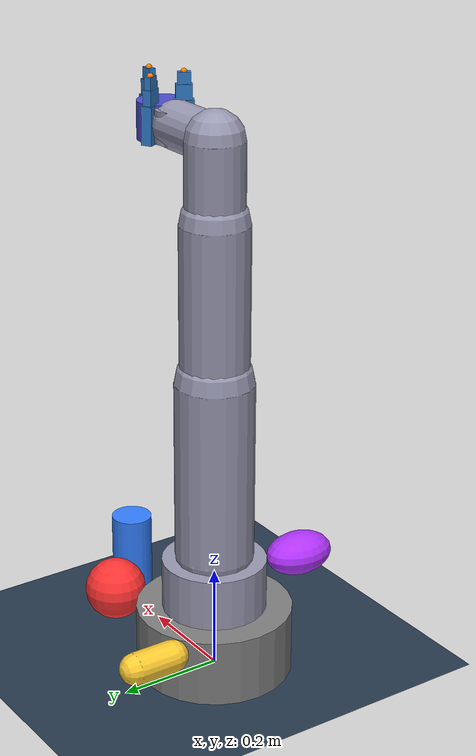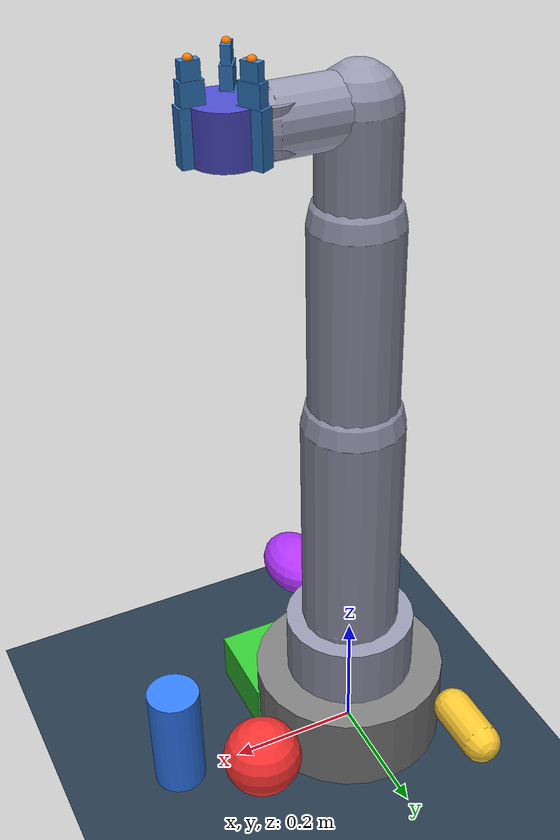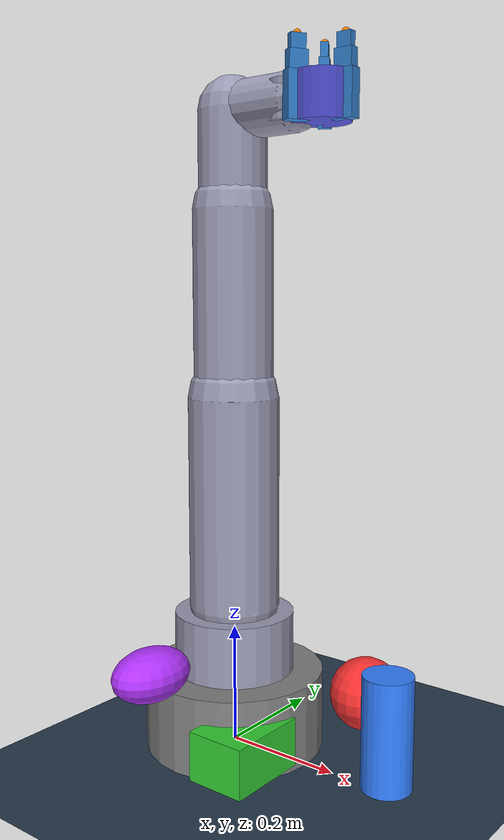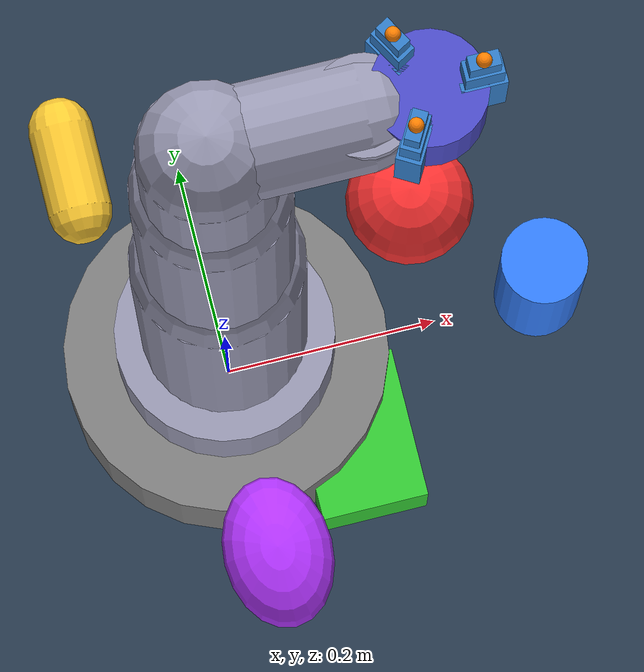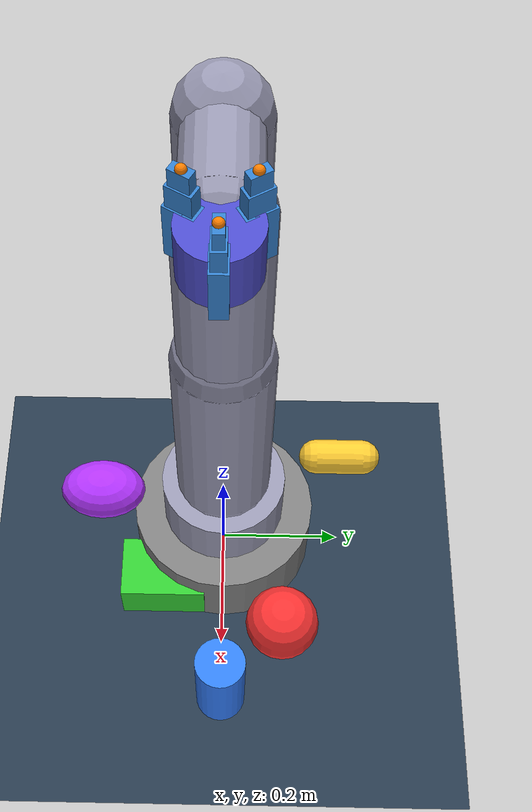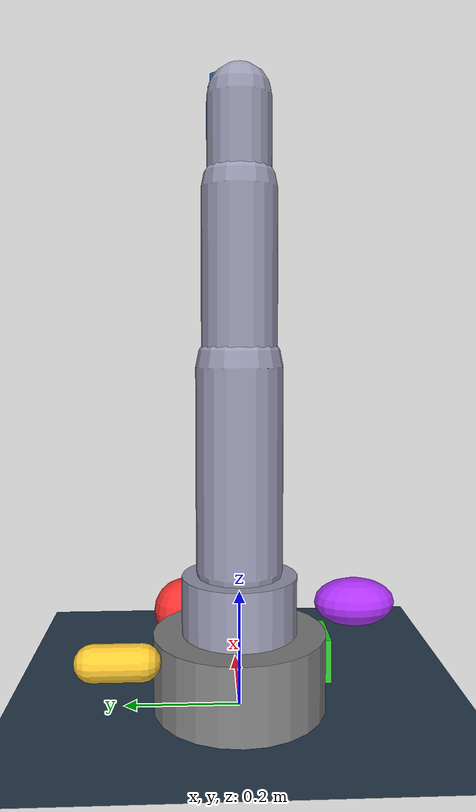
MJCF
<mujoco model="optimized_robotic_arm_3_finger_gripper">
  <compiler angle="radian" meshdir="assets/" texturedir="textures/"/>

  <option timestep="0.001" cone="elliptic">
    <flag equality="disable"/>
  </option>

  <size njmax="500" nconmax="100"/>

  <visual>
    <global offwidth="1920" offheight="1080"/>
    <quality shadowsize="2048"/>
    <headlight ambient="0.4 0.4 0.4" diffuse="0.8 0.8 0.8" specular="0.1 0.1 0.1"/>
  </visual>

  <default>
    <joint solreflimit="0.001 0.5" solimplimit="0 0.99" limited="true" armature="0.1" damping="1.5"/>
    <geom condim="6" friction="1 0.5 0.001" margin="0.001"/>
    <site rgba="1 0 0 0.8"/>
    <general ctrllimited="true" ctrlrange="-2 2" forcelimited="true" forcerange="-100 100"/>
  </default>

  <asset>
    <texture type="skybox" colorspace="auto" builtin="gradient" rgb1="0.4 0.6 0.8" rgb2="0.1 0.2 0.3" width="1024" height="6144"/>
    <texture type="2d" colorspace="auto" name="grid" builtin="checker" mark="edge" rgb1="0.2 0.3 0.4" rgb2="0.1 0.15 0.2" markrgb="0.8 0.8 0.8" width="300" height="300"/>
    <texture type="cube" colorspace="auto" name="metal" builtin="flat" mark="cross" rgb1="0.5 0.5 0.5" rgb2="0.7 0.7 0.7" markrgb="1 1 1" width="256" height="1536"/>
    <material name="grid_mat" texture="grid" texuniform="true" texrepeat="20 20" reflectance="0.2"/>
    <material name="metal_mat" texture="metal" texuniform="true" specular="1" reflectance="0.5"/>
    <material name="arm_mat" shininess="0.3" rgba="0.6 0.6 0.7 1"/>
    <material name="gripper_mat" specular="0.8" rgba="0.3 0.3 0.8 1"/>
    <material name="finger_mat" shininess="0.4" rgba="0.2 0.5 0.8 1"/>
    <material name="red_mat" rgba="1 0.2 0.2 1"/>
    <material name="green_mat" rgba="0.2 0.8 0.2 1"/>
    <material name="blue_mat" rgba="0.2 0.5 1 1"/>
    <material name="yellow_mat" rgba="1 0.8 0.2 1"/>
    <material name="purple_mat" rgba="0.7 0.2 1 1"/>
  </asset>

  <worldbody>
    <geom name="ground" size="3 3 0.1" type="plane" condim="3" material="grid_mat"/>
    <light pos="0 0 4" dir="0 0 -1" type="directional" diffuse="0.9 0.9 0.9"/>
    <light pos="3 3 2" dir="-0.57735 -0.57735 -0.57735" type="directional" diffuse="0.5 0.5 0.6" specular="0.1 0.1 0.1"/>
    <light pos="-3 -3 2" dir="0.57735 0.57735 -0.57735" type="directional" diffuse="0.4 0.4 0.5" specular="0.05 0.05 0.05"/>
    <body name="base" pos="0 0 0.05">
      <geom name="base_geom" size="0.15 0.08" type="cylinder" mass="5" material="metal_mat"/>
      <site name="base_site" pos="0 0 0" size="0.01"/>
      <body name="shoulder" pos="0 0 0.1">
        <joint name="joint1" pos="0 0 0" axis="0 0 1" range="-3.1416 3.1416" armature="0.2" damping="2"/>
        <geom name="shoulder_geom" size="0.1 0.08" type="cylinder" mass="2" material="arm_mat"/>
        <site name="shoulder_site" pos="0 0 0" size="0.008"/>
        <body name="upper_arm" pos="0 0 0.09">
          <joint name="joint2" pos="0 0 0" axis="0 1 0" range="-2 2" armature="0.15" damping="1.8"/>
          <geom name="upper_arm_geom" size="0.075 0.175" pos="0 0 0.175" quat="0 1 0 0" type="capsule" mass="1.5" material="arm_mat"/>
          <site name="upper_arm_site" pos="0 0 0.175" size="0.008"/>
          <body name="forearm" pos="0 0 0.35">
            <joint name="joint3" pos="0 0 0" axis="0 1 0" range="-2.5 0.5"/>
            <geom name="forearm_geom" size="0.065 0.15" pos="0 0 0.15" quat="0 1 0 0" type="capsule" mass="1.2" material="arm_mat"/>
            <site name="forearm_site" pos="0 0 0.15" size="0.008"/>
            <body name="wrist1" pos="0 0 0.3">
              <joint name="joint4" pos="0 0 0" axis="0 0 1" range="-2 2" armature="0.05" damping="1"/>
              <geom name="wrist1_geom" size="0.055 0.075" pos="0 0 0.075" quat="0 1 0 0" type="capsule" mass="0.5" material="arm_mat"/>
              <site name="wrist1_site" pos="0 0 0.075" size="0.008"/>
              <body name="wrist2" pos="0 0 0.15">
                <joint name="joint5" pos="0 0 0" axis="0 1 0" range="-1.8 1.8" armature="0.04" damping="0.8"/>
                <geom name="wrist2_geom" size="0.045 0.06" pos="0.06 0 0" quat="0.707107 0 -0.707107 0" type="capsule" mass="0.3" material="arm_mat"/>
                <site name="wrist2_site" pos="0.06 0 0" size="0.008"/>
                <body name="wrist3" pos="0.12 0 0">
                  <joint name="joint6" pos="0 0 0" axis="1 0 0" range="-1.8 1.8" armature="0.03" damping="0.6"/>
                  <geom name="wrist3_geom" size="0.04 0.03" type="cylinder" mass="0.2" material="arm_mat"/>
                  <site name="ee_site" pos="0 0 0" size="0.01" rgba="1 0 0 1"/>
                  <body name="gripper_base" pos="0.05 0 0">
                    <geom name="gripper_base_geom" size="0.045 0.035" type="cylinder" mass="0.15" material="gripper_mat"/>
                    <site name="grip_center" pos="0 0 0" size="0.008" rgba="0 1 0 1"/>
                    <body name="finger1_base" pos="0.04 0 0">
                      <joint name="finger1_slide" pos="0 0 0" axis="0 0 1" type="slide" stiffness="50" range="-0.02 0.06" damping="0.4"/>
                      <geom name="finger1_base_geom" size="0.018 0.01 0.035" type="box" mass="0.04" material="finger_mat"/>
                      <body name="finger1_proximal" pos="0 0 0.035">
                        <joint name="finger1_hinge1" pos="0 0 0" axis="0 1 0" stiffness="30" range="-0.2 1.5" armature="0.01" damping="0.3"/>
                        <geom name="finger1_proximal_geom" size="0.015 0.008 0.028" type="box" mass="0.025" material="finger_mat"/>
                        <body name="finger1_distal" pos="0 0 0.028">
                          <joint name="finger1_hinge2" pos="0 0 0" axis="0 1 0" stiffness="20" range="0 1.2" armature="0.005" damping="0.2"/>
                          <geom name="finger1_distal_geom" size="0.012 0.006 0.022" type="box" mass="0.018" material="finger_mat"/>
                          <site name="finger1_tip" pos="0 0 0.022" size="0.006" rgba="1 0.5 0 1"/>
                        </body>
                      </body>
                    </body>
                    <body name="finger2_base" pos="-0.02 0.035 0" quat="0.500171 0 0 0.865927">
                      <joint name="finger2_slide" pos="0 0 0" axis="0 0 1" type="slide" stiffness="50" range="-0.02 0.06" damping="0.4"/>
                      <geom name="finger2_base_geom" size="0.018 0.01 0.035" type="box" mass="0.04" material="finger_mat"/>
                      <body name="finger2_proximal" pos="0 0 0.035">
                        <joint name="finger2_hinge1" pos="0 0 0" axis="0 1 0" stiffness="30" range="-0.2 1.5" armature="0.01" damping="0.3"/>
                        <geom name="finger2_proximal_geom" size="0.015 0.008 0.028" type="box" mass="0.025" material="finger_mat"/>
                        <body name="finger2_distal" pos="0 0 0.028">
                          <joint name="finger2_hinge2" pos="0 0 0" axis="0 1 0" stiffness="20" range="0 1.2" armature="0.005" damping="0.2"/>
                          <geom name="finger2_distal_geom" size="0.012 0.006 0.022" type="box" mass="0.018" material="finger_mat"/>
                          <site name="finger2_tip" pos="0 0 0.022" size="0.006" rgba="1 0.5 0 1"/>
                        </body>
                      </body>
                    </body>
                    <body name="finger3_base" pos="-0.02 -0.035 0" quat="0.500171 0 0 -0.865927">
                      <joint name="finger3_slide" pos="0 0 0" axis="0 0 1" type="slide" stiffness="50" range="-0.02 0.06" damping="0.4"/>
                      <geom name="finger3_base_geom" size="0.018 0.01 0.035" type="box" mass="0.04" material="finger_mat"/>
                      <body name="finger3_proximal" pos="0 0 0.035">
                        <joint name="finger3_hinge1" pos="0 0 0" axis="0 1 0" stiffness="30" range="-0.2 1.5" armature="0.01" damping="0.3"/>
                        <geom name="finger3_proximal_geom" size="0.015 0.008 0.028" type="box" mass="0.025" material="finger_mat"/>
                        <body name="finger3_distal" pos="0 0 0.028">
                          <joint name="finger3_hinge2" pos="0 0 0" axis="0 1 0" stiffness="20" range="0 1.2" armature="0.005" damping="0.2"/>
                          <geom name="finger3_distal_geom" size="0.012 0.006 0.022" type="box" mass="0.018" material="finger_mat"/>
                          <site name="finger3_tip" pos="0 0 0.022" size="0.006" rgba="1 0.5 0 1"/>
                        </body>
                      </body>
                    </body>
                  </body>
                </body>
              </body>
            </body>
          </body>
        </body>
      </body>
    </body>
    <body name="test_sphere" pos="0.2 0.1 0.1">
      <joint name="sphere_joint" type="free"/>
      <geom name="sphere_geom" size="0.06" friction="0.7 0.3 0.01" mass="0.25" material="red_mat"/>
      <site name="sphere_site" pos="0 0 0" size="0.008"/>
    </body>
    <body name="test_box" pos="0.1 -0.1 0.05">
      <joint name="box_joint" type="free"/>
      <geom name="box_geom" size="0.05 0.07 0.04" type="box" friction="0.8 0.4 0.01" mass="0.35" material="green_mat"/>
      <site name="box_site" pos="0 0 0" size="0.008"/>
    </body>
    <body name="test_cylinder" pos="0.3 0 0.1">
      <joint name="cylinder_joint" type="free"/>
      <geom name="cylinder_geom" size="0.04 0.09" type="cylinder" friction="0.75 0.35 0.01" mass="0.3" material="blue_mat"/>
      <site name="cylinder_site" pos="0 0 0" size="0.008"/>
    </body>
    <body name="test_capsule" pos="-0.1 0.2 0.12">
      <joint name="capsule_joint" type="free"/>
      <geom name="capsule_geom" size="0.03 0.04" quat="0.707107 0.707107 0 0" type="capsule" friction="0.65 0.25 0.01" mass="0.2" material="yellow_mat"/>
      <site name="capsule_site" pos="0 0 0" size="0.008"/>
    </body>
    <body name="test_ellipsoid" pos="0 -0.2 0.18">
      <joint name="ellipsoid_joint" type="free"/>
      <geom name="ellipsoid_geom" size="0.05 0.07 0.04" type="ellipsoid" friction="0.6 0.2 0.01" mass="0.28" material="purple_mat"/>
      <site name="ellipsoid_site" pos="0 0 0" size="0.008"/>
    </body>
  </worldbody>

  <equality>
    <joint name="equal_finger_slide_12" joint1="finger1_slide" joint2="finger2_slide" polycoef="0 1 0 0 0"/>
    <joint name="equal_finger_slide_13" joint1="finger1_slide" joint2="finger3_slide" polycoef="0 1 0 0 0"/>
    <joint name="equal_finger_hinge1_12" joint1="finger1_hinge1" joint2="finger2_hinge1" polycoef="0 1 0 0 0"/>
    <joint name="equal_finger_hinge1_13" joint1="finger1_hinge1" joint2="finger3_hinge1" polycoef="0 1 0 0 0"/>
    <joint name="equal_finger_hinge2_12" joint1="finger1_hinge2" joint2="finger2_hinge2" polycoef="0 1 0 0 0"/>
    <joint name="equal_finger_hinge2_13" joint1="finger1_hinge2" joint2="finger3_hinge2" polycoef="0 1 0 0 0"/>
  </equality>

  <actuator>
    <general name="motor_joint1" joint="joint1" ctrlrange="-2.5 2.5" forcerange="-150 150" gear="80 0 0 0 0 0"/>
    <general name="motor_joint2" joint="joint2" ctrlrange="-2.5 2.5" forcerange="-120 120" gear="70 0 0 0 0 0"/>
    <general name="motor_joint3" joint="joint3" ctrlrange="-2.5 2.5" gear="60 0 0 0 0 0"/>
    <general name="motor_joint4" joint="joint4" forcerange="-80 80" gear="40 0 0 0 0 0"/>
    <general name="motor_joint5" joint="joint5" forcerange="-60 60" gear="40 0 0 0 0 0"/>
    <general name="motor_joint6" joint="joint6" forcerange="-40 40" gear="30 0 0 0 0 0"/>
    <general name="motor_finger1_slide" joint="finger1_slide" ctrlrange="-0.5 0.5" forcerange="-80 80" gear="50 0 0 0 0 0"/>
    <general name="motor_finger1_hinge1" joint="finger1_hinge1" ctrlrange="-0.5 1.5" forcerange="-60 60" gear="35 0 0 0 0 0"/>
    <general name="motor_finger1_hinge2" joint="finger1_hinge2" ctrlrange="0 1.2" forcerange="-40 40" gear="25 0 0 0 0 0"/>
    <general name="motor_finger2_slide" joint="finger2_slide" ctrlrange="-0.5 0.5" forcerange="-80 80" gear="50 0 0 0 0 0"/>
    <general name="motor_finger2_hinge1" joint="finger2_hinge1" ctrlrange="-0.5 1.5" forcerange="-60 60" gear="35 0 0 0 0 0"/>
    <general name="motor_finger2_hinge2" joint="finger2_hinge2" ctrlrange="0 1.2" forcerange="-40 40" gear="25 0 0 0 0 0"/>
    <general name="motor_finger3_slide" joint="finger3_slide" ctrlrange="-0.5 0.5" forcerange="-80 80" gear="50 0 0 0 0 0"/>
    <general name="motor_finger3_hinge1" joint="finger3_hinge1" ctrlrange="-0.5 1.5" forcerange="-60 60" gear="35 0 0 0 0 0"/>
    <general name="motor_finger3_hinge2" joint="finger3_hinge2" ctrlrange="0 1.2" forcerange="-40 40" gear="25 0 0 0 0 0"/>
  </actuator>

  <sensor>
    <jointpos joint="joint1" name="sensor_joint1"/>
    <jointpos joint="joint2" name="sensor_joint2"/>
    <jointpos joint="joint3" name="sensor_joint3"/>
    <jointpos joint="joint4" name="sensor_joint4"/>
    <jointpos joint="joint5" name="sensor_joint5"/>
    <jointpos joint="joint6" name="sensor_joint6"/>
    <jointpos joint="finger1_slide" name="sensor_finger1_slide"/>
    <jointpos joint="finger1_hinge1" name="sensor_finger1_hinge1"/>
    <jointpos joint="finger1_hinge2" name="sensor_finger1_hinge2"/>
    <jointpos joint="finger2_slide" name="sensor_finger2_slide"/>
    <jointpos joint="finger2_hinge1" name="sensor_finger2_hinge1"/>
    <jointpos joint="finger2_hinge2" name="sensor_finger2_hinge2"/>
    <jointpos joint="finger3_slide" name="sensor_finger3_slide"/>
    <jointpos joint="finger3_hinge1" name="sensor_finger3_hinge1"/>
    <jointpos joint="finger3_hinge2" name="sensor_finger3_hinge2"/>
    <force site="finger1_tip" name="sensor_finger1_force"/>
    <force site="finger2_tip" name="sensor_finger2_force"/>
    <force site="finger3_tip" name="sensor_finger3_force"/>
    <touch site="finger1_tip" name="sensor_finger1_touch"/>
    <touch site="finger2_tip" name="sensor_finger2_touch"/>
    <touch site="finger3_tip" name="sensor_finger3_touch"/>
    <framepos objtype="site" objname="grip_center" name="sensor_gripper_pos"/>
    <framequat objtype="site" objname="grip_center" name="sensor_gripper_quat"/>
    <framepos objtype="body" objname="test_sphere" name="sensor_sphere_pos"/>
    <framepos objtype="body" objname="test_box" name="sensor_box_pos"/>
    <framepos objtype="body" objname="test_cylinder" name="sensor_cylinder_pos"/>
    <framepos objtype="body" objname="test_capsule" name="sensor_capsule_pos"/>
    <framepos objtype="body" objname="test_ellipsoid" name="sensor_ellipsoid_pos"/>
    <rangefinder site="grip_center" name="sensor_gripper_range" cutoff="0.5"/>
  </sensor>
</mujoco>
